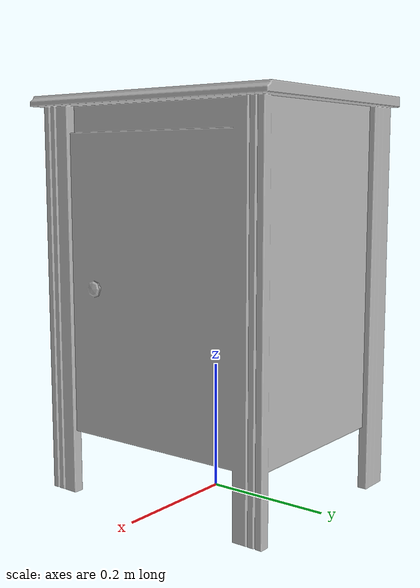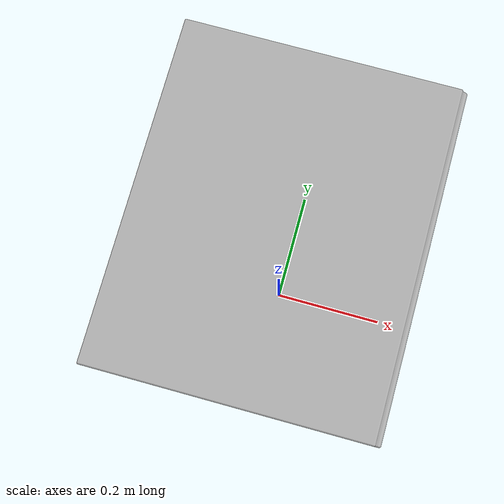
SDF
<?xml version='1.0'?>
<sdf version='1.4'>
  <model name='s__999'>
    <pose>0 0 0 0 0 0</pose>
    <static>true</static>
    <link name='link'>
      <collision name='collision'>
        <pose>0 0 0 0 0 0</pose>
        <geometry>
          <box>
            <size>0.36 0.44 2</size>
          </box>
        </geometry>
      </collision>
      <visual name='visual'>
        <pose>0 0 0 0 0 0</pose>
        <geometry>
          <mesh><uri>model://s__999/s__999.dae</uri></mesh>
        </geometry>
      </visual>
    </link>
  </model>
</sdf>
